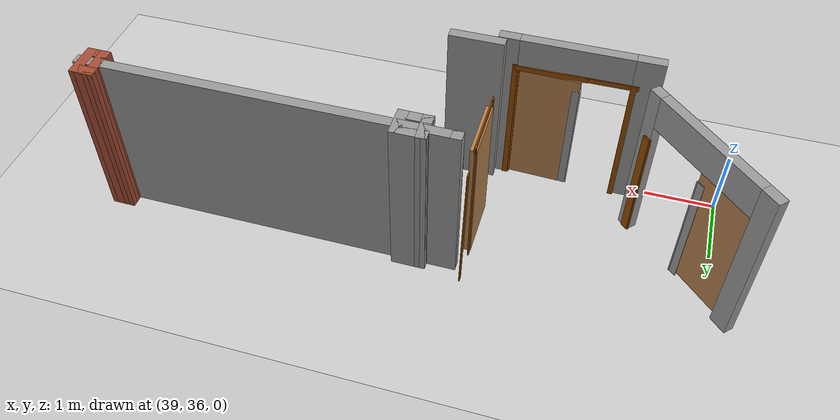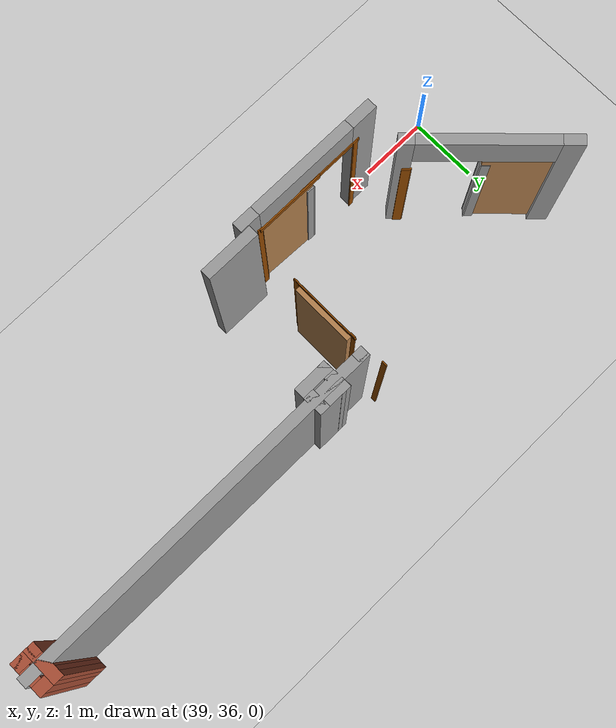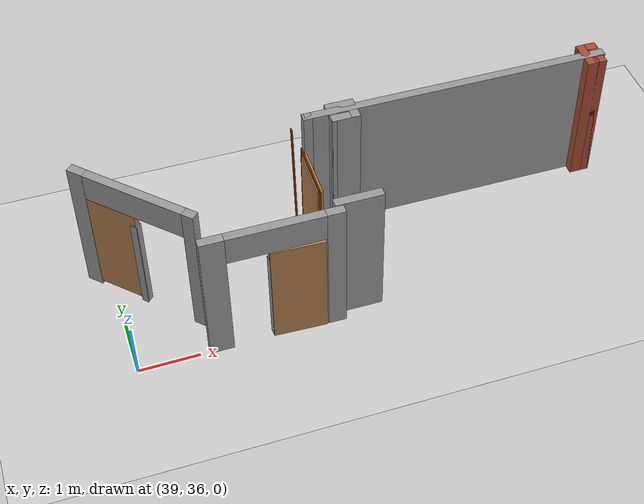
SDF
<sdf version="1.6">
 <world name="default">
  <model name="ground_plane">
   <static>1</static>
   <link name="link">
    <collision name="collision">
     <geometry><plane><normal>0 0 1</normal><size>100 100</size></plane></geometry>
     <surface><friction><ode><mu>100</mu><mu2>50</mu2></ode></friction></surface>
    </collision>
    <visual name="visual">
     <cast_shadows>0</cast_shadows>
     <geometry><plane><normal>0 0 1</normal><size>100 100</size></plane></geometry>
     <material>
      <script><uri>file://media/materials/scripts/gazebo.material</uri><name>Gazebo/Grey</name></script>
     </material>
    </visual>
   </link>
  </model>
  <model name="CVSSP">
   <pose>23.8714 24.094 0 0 -0 0</pose>
   <link name="Wall_1">
    <pose>15.5976 13.2926 0 0 0 -0.785398</pose>
    <visual name="Wall_1_Visual_0">
     <pose>-0.986494 0 1.25 0 -0 0</pose>
     <geometry><box><size>0.277012 0.15 2.5</size></box></geometry>
     <material>
      <script><uri>file://media/materials/scripts/gazebo.material</uri><name>Gazebo/Grey</name></script>
      <ambient>0.588235 0.588235 0.588235 1</ambient>
     </material>
    </visual>
    <collision name="Wall_1_Collision_0">
     <geometry><box><size>0.277012 0.15 2.5</size></box></geometry>
     <pose>-0.986494 0 1.25 0 -0 0</pose>
    </collision>
    <visual name="Wall_1_Visual_1">
     <pose>1.02335 0 1.25 0 -0 0</pose>
     <geometry><box><size>0.203299 0.15 2.5</size></box></geometry>
     <material>
      <script><uri>file://media/materials/scripts/gazebo.material</uri><name>Gazebo/Grey</name></script>
      <ambient>0.588235 0.588235 0.588235 1</ambient>
     </material>
    </visual>
    <collision name="Wall_1_Collision_1">
     <geometry><box><size>0.203299 0.15 2.5</size></box></geometry>
     <pose>1.02335 0 1.25 0 -0 0</pose>
    </collision>
    <visual name="Wall_1_Visual_2">
     <pose>0.036857 0 2.25 0 -0 0</pose>
     <geometry><box><size>1.76969 0.15 0.5</size></box></geometry>
     <material>
      <script><uri>file://media/materials/scripts/gazebo.material</uri><name>Gazebo/Grey</name></script>
      <ambient>0.588235 0.588235 0.588235 1</ambient>
     </material>
    </visual>
    <collision name="Wall_1_Collision_2">
     <geometry><box><size>1.76969 0.15 0.5</size></box></geometry>
     <pose>0.036857 0 2.25 0 -0 0</pose>
    </collision>
   </link>
   <link name="Wall_228">
    <pose>17.4069 11.9566 0 0 -0 0</pose>
    <visual name="Wall_228_Visual_0">
     <pose>-0.929285 0 1.25 0 -0 0</pose>
     <geometry><box><size>0.391429 0.15 2.5</size></box></geometry>
     <material>
      <script><uri>file://media/materials/scripts/gazebo.material</uri><name>Gazebo/Grey</name></script>
      <ambient>0.588235 0.588235 0.588235 1</ambient>
     </material>
    </visual>
    <collision name="Wall_228_Collision_0">
     <geometry><box><size>0.391429 0.15 2.5</size></box></geometry>
     <pose>-0.929285 0 1.25 0 -0 0</pose>
    </collision>
    <visual name="Wall_228_Visual_1">
     <pose>0.97634 0 1.25 0 -0 0</pose>
     <geometry><box><size>0.297321 0.15 2.5</size></box></geometry>
     <material>
      <script><uri>file://media/materials/scripts/gazebo.material</uri><name>Gazebo/Grey</name></script>
      <ambient>0.588235 0.588235 0.588235 1</ambient>
     </material>
    </visual>
    <collision name="Wall_228_Collision_1">
     <geometry><box><size>0.297321 0.15 2.5</size></box></geometry>
     <pose>0.97634 0 1.25 0 -0 0</pose>
    </collision>
    <visual name="Wall_228_Visual_2">
     <pose>0.047054 0 2.25 0 -0 0</pose>
     <geometry><box><size>1.56125 0.15 0.5</size></box></geometry>
     <material>
      <script><uri>file://media/materials/scripts/gazebo.material</uri><name>Gazebo/Grey</name></script>
      <ambient>0.588235 0.588235 0.588235 1</ambient>
     </material>
    </visual>
    <collision name="Wall_228_Collision_2">
     <geometry><box><size>1.56125 0.15 0.5</size></box></geometry>
     <pose>0.047054 0 2.25 0 -0 0</pose>
    </collision>
   </link>
   <link name="Wall_233">
    <collision name="Wall_233_Collision">
     <geometry><box><size>0.784783 0.15 2.5</size></box></geometry>
     <pose>0 0 1.25 0 -0 0</pose>
    </collision>
    <visual name="Wall_233_Visual">
     <pose>0 0 1.25 0 -0 0</pose>
     <geometry><box><size>0.784783 0.15 2.5</size></box></geometry>
     <material>
      <script><uri>file://media/materials/scripts/gazebo.material</uri><name>Gazebo/Grey</name></script>
      <ambient>1 1 1 1</ambient>
     </material>
    </visual>
    <pose>18.7997 12.116 0 0 -0 3.14159</pose>
   </link>
   <link name="Wall_533">
    <collision name="Wall_533_Collision">
     <geometry><box><size>5.25 0.15 2.5</size></box></geometry>
     <pose>0 0 1.25 0 -0 0</pose>
    </collision>
    <visual name="Wall_533_Visual">
     <pose>0 0 1.25 0 -0 0</pose>
     <geometry><box><size>5.25 0.15 2.5</size></box></geometry>
     <material>
      <script><uri>file://media/materials/scripts/gazebo.material</uri><name>Gazebo/Grey</name></script>
      <ambient>0.588235 0.588235 0.588235 1</ambient>
     </material>
    </visual>
    <pose>21.1286 14.0544 0 0 -0 3.14159</pose>
   </link>
   <link name="Wall_534">
    <collision name="Wall_534_Collision">
     <geometry><box><size>0.15 0.15 2.5</size></box></geometry>
     <pose>0 0 1.25 0 -0 0</pose>
    </collision>
    <visual name="Wall_534_Visual">
     <pose>0 0 1.25 0 -0 0</pose>
     <geometry><box><size>0.15 0.15 2.5</size></box></geometry>
     <material>
      <script><uri>file://media/materials/scripts/gazebo.material</uri><name>Gazebo/Grey</name></script>
      <ambient>1 1 1 1</ambient>
     </material>
    </visual>
    <pose>18.5786 14.0544 0 0 -0 0</pose>
   </link>
   <link name="Wall_535">
    <collision name="Wall_535_Collision">
     <geometry><box><size>0.15 0.15 2.5</size></box></geometry>
     <pose>0 0 1.25 0 -0 0</pose>
    </collision>
    <visual name="Wall_535_Visual">
     <pose>0 0 1.25 0 -0 0</pose>
     <geometry><box><size>0.15 0.15 2.5</size></box></geometry>
     <material>
      <script><uri>file://media/materials/scripts/gazebo.material</uri><name>Gazebo/Grey</name></script>
      <ambient>1 1 1 1</ambient>
     </material>
    </visual>
    <pose>18.5786 14.0544 0 0 -0 0</pose>
   </link>
   <link name="Wall_673">
    <collision name="Wall_673_Collision">
     <geometry><box><size>0.486902 0.15 2.5</size></box></geometry>
     <pose>0 0 1.25 0 -0 0</pose>
    </collision>
    <visual name="Wall_673_Visual">
     <pose>0 0 1.25 0 -0 0</pose>
     <geometry><box><size>0.486902 0.15 2.5</size></box></geometry>
     <material>
      <script><uri>file://media/materials/scripts/gazebo.material</uri><name>Gazebo/Grey</name></script>
      <ambient>1 1 1 1</ambient>
     </material>
    </visual>
    <pose>19.1589 14.1574 0 0 -0 0</pose>
   </link>
   <link name="Wall_674">
    <collision name="Wall_674_Collision">
     <geometry><box><size>0.426562 0.15 2.5</size></box></geometry>
     <pose>0 0 1.25 0 -0 0</pose>
    </collision>
    <visual name="Wall_674_Visual">
     <pose>0 0 1.25 0 -0 0</pose>
     <geometry><box><size>0.426562 0.15 2.5</size></box></geometry>
     <material>
      <script><uri>file://media/materials/scripts/gazebo.material</uri><name>Gazebo/Grey</name></script>
      <ambient>1 1 1 1</ambient>
     </material>
    </visual>
    <pose>19.3273 14.0191 0 0 0 -1.5708</pose>
   </link>
   <link name="Wall_675">
    <collision name="Wall_675_Collision">
     <geometry><box><size>0.476846 0.15 2.5</size></box></geometry>
     <pose>0 0 1.25 0 -0 0</pose>
    </collision>
    <visual name="Wall_675_Visual">
     <pose>0 0 1.25 0 -0 0</pose>
     <geometry><box><size>0.476846 0.15 2.5</size></box></geometry>
     <material>
      <script><uri>file://media/materials/scripts/gazebo.material</uri><name>Gazebo/Grey</name></script>
      <ambient>1 1 1 1</ambient>
     </material>
    </visual>
    <pose>19.1639 13.8808 0 0 -0 3.14159</pose>
   </link>
   <link name="Wall_676">
    <collision name="Wall_676_Collision">
     <geometry><box><size>0.426744 0.15 2.5</size></box></geometry>
     <pose>0 0 1.25 0 -0 0</pose>
    </collision>
    <visual name="Wall_676_Visual">
     <pose>0 0 1.25 0 -0 0</pose>
     <geometry><box><size>0.426744 0.15 2.5</size></box></geometry>
     <material>
      <script><uri>file://media/materials/scripts/gazebo.material</uri><name>Gazebo/Grey</name></script>
      <ambient>1 1 1 1</ambient>
     </material>
    </visual>
    <pose>18.9954 14.0191 0 0 -0 1.60714</pose>
   </link>
   <link name="Wall_678">
    <collision name="Wall_678_Collision">
     <geometry><box><size>0.341089 0.15 2.5</size></box></geometry>
     <pose>0 0 1.25 0 -0 0</pose>
    </collision>
    <visual name="Wall_678_Visual">
     <pose>0 0 1.25 0 -0 0</pose>
     <geometry><box><size>0.341089 0.15 2.5</size></box></geometry>
     <material>
      <script><uri>file://media/materials/scripts/gazebo.material</uri><name>Gazebo/Bricks</name></script>
      <ambient>1 1 1 1</ambient>
     </material>
    </visual>
    <pose>23.5361 14.2369 0 0 -0 3.13119</pose>
   </link>
   <link name="Wall_679">
    <collision name="Wall_679_Collision">
     <geometry><box><size>0.501988 0.15 2.5</size></box></geometry>
     <pose>0 0 1.25 0 -0 0</pose>
    </collision>
    <visual name="Wall_679_Visual">
     <pose>0 0 1.25 0 -0 0</pose>
     <geometry><box><size>0.501988 0.15 2.5</size></box></geometry>
     <material>
      <script><uri>file://media/materials/scripts/gazebo.material</uri><name>Gazebo/Bricks</name></script>
      <ambient>1 1 1 1</ambient>
     </material>
    </visual>
    <pose>23.4405 14.0619 0 0 0 -1.5708</pose>
   </link>
   <link name="Wall_680">
    <collision name="Wall_680_Collision">
     <geometry><box><size>0.341145 0.15 2.5</size></box></geometry>
     <pose>0 0 1.25 0 -0 0</pose>
    </collision>
    <visual name="Wall_680_Visual">
     <pose>0 0 1.25 0 -0 0</pose>
     <geometry><box><size>0.341145 0.15 2.5</size></box></geometry>
     <material>
      <script><uri>file://media/materials/scripts/gazebo.material</uri><name>Gazebo/Bricks</name></script>
      <ambient>1 1 1 1</ambient>
     </material>
    </visual>
    <pose>23.5361 13.8859 0 0 -0 0</pose>
   </link>
   <link name="Wall_681">
    <collision name="Wall_681_Collision">
     <geometry><box><size>0.5 0.15 2.5</size></box></geometry>
     <pose>0 0 1.25 0 -0 0</pose>
    </collision>
    <visual name="Wall_681_Visual">
     <pose>0 0 1.25 0 -0 0</pose>
     <geometry><box><size>0.5 0.15 2.5</size></box></geometry>
     <material>
      <script><uri>file://media/materials/scripts/gazebo.material</uri><name>Gazebo/Bricks</name></script>
      <ambient>1 1 1 1</ambient>
     </material>
    </visual>
    <pose>23.6316 14.0609 0 0 -0 1.5708</pose>
   </link>
   <static>1</static>
  </model>
  <model name="basic_ply_door_corrected_clone_0_clone">
   <link name="link">
    <pose>-0 0 1.00385 0 -0 0</pose>
    <inertial>
     <mass>0.5167</mass>
     <inertia>
      <ixx>0.00086117</ixx>
      <ixy>0</ixy>
      <ixz>0</ixz>
      <iyy>0.00086117</iyy>
      <iyz>0</iyz>
      <izz>0.00086117</izz>
     </inertia>
    </inertial>
    <gravity>0</gravity>
    <visual name="visual">
     <geometry><box><size>0.88 0.1 1.96</size></box></geometry>
     <material>
      <script><uri>file://media/materials/scripts/gazebo.material</uri><name>Gazebo/Wood</name></script>
      <shader type="pixel"><normal_map>__default__</normal_map></shader>
      <ambient>1 1 1 1</ambient>
      <diffuse>1 1 1 1</diffuse>
      <specular>0.2 0.2 0.2 1</specular>
      <emissive>0 0 0 1</emissive>
     </material>
    </visual>
    <collision name="collision">
     <geometry><box><size>0.88 0.1 1.96</size></box></geometry>
     <surface>
      <friction>
       <ode><mu>1</mu><mu2>1</mu2><fdir1>0 0 0</fdir1><slip1>0</slip1><slip2>0</slip2></ode>
       <torsional>
        <coefficient>1</coefficient>
        <patch_radius>0</patch_radius>
        <surface_radius>0.01</surface_radius>
        <use_patch_radius>0</use_patch_radius>
        <ode><slip>0</slip></ode>
       </torsional>
      </friction>
      <bounce><restitution_coefficient>0</restitution_coefficient><threshold>1e+06</threshold></bounce>
      <contact>
       <collide_without_contact>0</collide_without_contact>
       <collide_without_contact_bitmask>1</collide_without_contact_bitmask>
       <collide_bitmask>1</collide_bitmask>
       <ode>
        <soft_cfm>0</soft_cfm>
        <soft_erp>0.2</soft_erp>
        <kp>100000</kp>
        <kd>100</kd>
        <max_vel>100</max_vel>
        <min_depth>0.001</min_depth>
       </ode>
       <bullet>
        <split_impulse>1</split_impulse>
        <split_impulse_penetration_threshold>-0.01</split_impulse_penetration_threshold>
        <soft_cfm>0</soft_cfm>
        <soft_erp>0.2</soft_erp>
        <kp>100000</kp>
        <kd>100</kd>
       </bullet>
      </contact>
     </surface>
    </collision>
   </link>
   <static>1</static>
   <pose>42.2958 37.3999 -0.001013 0 -0 1.56379</pose>
  </model>
  <model name="basic_ply_door_corrected_clone_clone_clone_0">
   <link name="link">
    <pose>-0 0 1.00385 0 -0 0</pose>
    <inertial>
     <mass>0.5167</mass>
     <inertia>
      <ixx>0.00086117</ixx>
      <ixy>0</ixy>
      <ixz>0</ixz>
      <iyy>0.00086117</iyy>
      <iyz>0</iyz>
      <izz>0.00086117</izz>
     </inertia>
    </inertial>
    <gravity>0</gravity>
    <visual name="visual">
     <geometry><box><size>0.88 0.1 1.96</size></box></geometry>
     <material>
      <script><uri>file://media/materials/scripts/gazebo.material</uri><name>Gazebo/Wood</name></script>
      <shader type="pixel"><normal_map>__default__</normal_map></shader>
      <ambient>1 1 1 1</ambient>
      <diffuse>1 1 1 1</diffuse>
      <specular>0.2 0.2 0.2 1</specular>
      <emissive>0 0 0 1</emissive>
     </material>
    </visual>
    <collision name="collision">
     <geometry><box><size>0.88 0.1 1.96</size></box></geometry>
     <surface>
      <friction>
       <ode><mu>1</mu><mu2>1</mu2><fdir1>0 0 0</fdir1><slip1>0</slip1><slip2>0</slip2></ode>
       <torsional>
        <coefficient>1</coefficient>
        <patch_radius>0</patch_radius>
        <surface_radius>0.01</surface_radius>
        <use_patch_radius>0</use_patch_radius>
        <ode><slip>0</slip></ode>
       </torsional>
      </friction>
      <bounce><restitution_coefficient>0</restitution_coefficient><threshold>1e+06</threshold></bounce>
      <contact>
       <collide_without_contact>0</collide_without_contact>
       <collide_without_contact_bitmask>1</collide_without_contact_bitmask>
       <collide_bitmask>1</collide_bitmask>
       <ode>
        <soft_cfm>0</soft_cfm>
        <soft_erp>0.2</soft_erp>
        <kp>100000</kp>
        <kd>100</kd>
        <max_vel>100</max_vel>
        <min_depth>0.001</min_depth>
       </ode>
       <bullet>
        <split_impulse>1</split_impulse>
        <split_impulse_penetration_threshold>-0.01</split_impulse_penetration_threshold>
        <soft_cfm>0</soft_cfm>
        <soft_erp>0.2</soft_erp>
        <kp>100000</kp>
        <kd>100</kd>
       </bullet>
      </contact>
     </surface>
    </collision>
   </link>
   <static>1</static>
   <pose>39.1655 37.6601 0.061101 0 0 -0.784105</pose>
  </model>
  <model name="basic_ply_door_corrected_clone_clone_clone_1">
   <link name="link">
    <pose>-0 0 1.00385 0 -0 0</pose>
    <inertial>
     <mass>0.5167</mass>
     <inertia>
      <ixx>0.00086117</ixx>
      <ixy>0</ixy>
      <ixz>0</ixz>
      <iyy>0.00086117</iyy>
      <iyz>0</iyz>
      <izz>0.00086117</izz>
     </inertia>
    </inertial>
    <gravity>0</gravity>
    <visual name="visual">
     <geometry><box><size>0.88 0.1 1.96</size></box></geometry>
     <material>
      <script><uri>file://media/materials/scripts/gazebo.material</uri><name>Gazebo/Wood</name></script>
      <shader type="pixel"><normal_map>__default__</normal_map></shader>
      <ambient>1 1 1 1</ambient>
      <diffuse>1 1 1 1</diffuse>
      <specular>0.2 0.2 0.2 1</specular>
      <emissive>0 0 0 1</emissive>
     </material>
    </visual>
    <collision name="collision">
     <geometry><box><size>0.88 0.1 1.96</size></box></geometry>
     <surface>
      <friction>
       <ode><mu>1</mu><mu2>1</mu2><fdir1>0 0 0</fdir1><slip1>0</slip1><slip2>0</slip2></ode>
       <torsional>
        <coefficient>1</coefficient>
        <patch_radius>0</patch_radius>
        <surface_radius>0.01</surface_radius>
        <use_patch_radius>0</use_patch_radius>
        <ode><slip>0</slip></ode>
       </torsional>
      </friction>
      <bounce><restitution_coefficient>0</restitution_coefficient><threshold>1e+06</threshold></bounce>
      <contact>
       <collide_without_contact>0</collide_without_contact>
       <collide_without_contact_bitmask>1</collide_without_contact_bitmask>
       <collide_bitmask>1</collide_bitmask>
       <ode>
        <soft_cfm>0</soft_cfm>
        <soft_erp>0.2</soft_erp>
        <kp>100000</kp>
        <kd>100</kd>
        <max_vel>100</max_vel>
        <min_depth>0.001</min_depth>
       </ode>
       <bullet>
        <split_impulse>1</split_impulse>
        <split_impulse_penetration_threshold>-0.01</split_impulse_penetration_threshold>
        <soft_cfm>0</soft_cfm>
        <soft_erp>0.2</soft_erp>
        <kp>100000</kp>
        <kd>100</kd>
       </bullet>
      </contact>
     </surface>
    </collision>
   </link>
   <static>1</static>
   <pose>41.6497 36.0398 -0.036806 0 0 -0.036583</pose>
  </model>
  <model name="metal_hinge">
   <link name="link">
    <inertial>
     <mass>1</mass>
     <inertia>
      <ixx>0.166667</ixx>
      <ixy>0</ixy>
      <ixz>0</ixz>
      <iyy>0.166667</iyy>
      <iyz>0</iyz>
      <izz>0.166667</izz>
     </inertia>
    </inertial>
    <visual name="visual">
     <geometry><box><size>0.018685 0.118108 1.77296</size></box></geometry>
     <material>
      <script><name>Gazebo/Grey</name><uri>file://media/materials/scripts/gazebo.material</uri></script>
      <shader type="pixel"/>
     </material>
    </visual>
    <collision name="collision">
     <geometry><box><size>0.018685 0.118108 1.77296</size></box></geometry>
     <surface>
      <friction>
       <ode><mu>1</mu><mu2>1</mu2><fdir1>0 0 0</fdir1><slip1>0</slip1><slip2>0</slip2></ode>
       <torsional>
        <coefficient>1</coefficient>
        <patch_radius>0</patch_radius>
        <surface_radius>0</surface_radius>
        <use_patch_radius>1</use_patch_radius>
        <ode><slip>0</slip></ode>
       </torsional>
      </friction>
      <bounce><restitution_coefficient>0</restitution_coefficient><threshold>1e+06</threshold></bounce>
      <contact>
       <collide_without_contact>0</collide_without_contact>
       <collide_without_contact_bitmask>1</collide_without_contact_bitmask>
       <collide_bitmask>1</collide_bitmask>
       <ode>
        <soft_cfm>0</soft_cfm>
        <soft_erp>0.2</soft_erp>
        <kp>1e+13</kp>
        <kd>1</kd>
        <max_vel>0.01</max_vel>
        <min_depth>0</min_depth>
       </ode>
       <bullet>
        <split_impulse>1</split_impulse>
        <split_impulse_penetration_threshold>-0.01</split_impulse_penetration_threshold>
        <soft_cfm>0</soft_cfm>
        <soft_erp>0.2</soft_erp>
        <kp>1e+13</kp>
        <kd>1</kd>
       </bullet>
      </contact>
     </surface>
    </collision>
   </link>
   <static>1</static>
   <pose>39.4719 37.4232 0.901519 0 0 -2.35193</pose>
  </model>
  <model name="metal_hinge_clone">
   <link name="link">
    <inertial>
     <mass>1</mass>
     <inertia>
      <ixx>0.166667</ixx>
      <ixy>0</ixy>
      <ixz>0</ixz>
      <iyy>0.166667</iyy>
      <iyz>0</iyz>
      <izz>0.166667</izz>
     </inertia>
    </inertial>
    <visual name="visual">
     <geometry><box><size>0.018685 0.118108 1.77296</size></box></geometry>
     <material>
      <script><name>Gazebo/Grey</name><uri>file://media/materials/scripts/gazebo.material</uri></script>
      <shader type="pixel"/>
     </material>
    </visual>
    <collision name="collision">
     <geometry><box><size>0.018685 0.118108 1.77296</size></box></geometry>
     <surface>
      <friction>
       <ode><mu>1</mu><mu2>1</mu2><fdir1>0 0 0</fdir1><slip1>0</slip1><slip2>0</slip2></ode>
       <torsional>
        <coefficient>1</coefficient>
        <patch_radius>0</patch_radius>
        <surface_radius>0</surface_radius>
        <use_patch_radius>1</use_patch_radius>
        <ode><slip>0</slip></ode>
       </torsional>
      </friction>
      <bounce><restitution_coefficient>0</restitution_coefficient><threshold>1e+06</threshold></bounce>
      <contact>
       <collide_without_contact>0</collide_without_contact>
       <collide_without_contact_bitmask>1</collide_without_contact_bitmask>
       <collide_bitmask>1</collide_bitmask>
       <ode>
        <soft_cfm>0</soft_cfm>
        <soft_erp>0.2</soft_erp>
        <kp>1e+13</kp>
        <kd>1</kd>
        <max_vel>0.01</max_vel>
        <min_depth>0</min_depth>
       </ode>
       <bullet>
        <split_impulse>1</split_impulse>
        <split_impulse_penetration_threshold>-0.01</split_impulse_penetration_threshold>
        <soft_cfm>0</soft_cfm>
        <soft_erp>0.2</soft_erp>
        <kp>1e+13</kp>
        <kd>1</kd>
       </bullet>
      </contact>
     </surface>
    </collision>
   </link>
   <static>1</static>
   <pose>39.4112 37.3382 0.901519 0 0 -2.35193</pose>
  </model>
  <model name="metal_hinge_clone_0">
   <link name="link">
    <inertial>
     <mass>1</mass>
     <inertia>
      <ixx>0.166667</ixx>
      <ixy>0</ixy>
      <ixz>0</ixz>
      <iyy>0.166667</iyy>
      <iyz>0</iyz>
      <izz>0.166667</izz>
     </inertia>
    </inertial>
    <visual name="visual">
     <geometry><box><size>0.018685 0.118108 1.77296</size></box></geometry>
     <material>
      <script><name>Gazebo/Grey</name><uri>file://media/materials/scripts/gazebo.material</uri></script>
      <shader type="pixel"/>
     </material>
    </visual>
    <collision name="collision">
     <geometry><box><size>0.018685 0.118108 1.77296</size></box></geometry>
     <surface>
      <friction>
       <ode><mu>1</mu><mu2>1</mu2><fdir1>0 0 0</fdir1><slip1>0</slip1><slip2>0</slip2></ode>
       <torsional>
        <coefficient>1</coefficient>
        <patch_radius>0</patch_radius>
        <surface_radius>0</surface_radius>
        <use_patch_radius>1</use_patch_radius>
        <ode><slip>0</slip></ode>
       </torsional>
      </friction>
      <bounce><restitution_coefficient>0</restitution_coefficient><threshold>1e+06</threshold></bounce>
      <contact>
       <collide_without_contact>0</collide_without_contact>
       <collide_without_contact_bitmask>1</collide_without_contact_bitmask>
       <collide_bitmask>1</collide_bitmask>
       <ode>
        <soft_cfm>0</soft_cfm>
        <soft_erp>0.2</soft_erp>
        <kp>1e+13</kp>
        <kd>1</kd>
        <max_vel>0.01</max_vel>
        <min_depth>0</min_depth>
       </ode>
       <bullet>
        <split_impulse>1</split_impulse>
        <split_impulse_penetration_threshold>-0.01</split_impulse_penetration_threshold>
        <soft_cfm>0</soft_cfm>
        <soft_erp>0.2</soft_erp>
        <kp>1e+13</kp>
        <kd>1</kd>
       </bullet>
      </contact>
     </surface>
    </collision>
   </link>
   <static>1</static>
   <pose>39.487 37.3452 0.901519 0 -0 2.34901</pose>
  </model>
  <model name="metal_hinge_clone_1">
   <link name="link">
    <inertial>
     <mass>1</mass>
     <inertia>
      <ixx>0.166667</ixx>
      <ixy>0</ixy>
      <ixz>0</ixz>
      <iyy>0.166667</iyy>
      <iyz>0</iyz>
      <izz>0.166667</izz>
     </inertia>
    </inertial>
    <visual name="visual">
     <geometry><box><size>0.018685 0.118108 1.77296</size></box></geometry>
     <material>
      <script><name>Gazebo/Grey</name><uri>file://media/materials/scripts/gazebo.material</uri></script>
      <shader type="pixel"/>
     </material>
    </visual>
    <collision name="collision">
     <geometry><box><size>0.018685 0.118108 1.77296</size></box></geometry>
     <surface>
      <friction>
       <ode><mu>1</mu><mu2>1</mu2><fdir1>0 0 0</fdir1><slip1>0</slip1><slip2>0</slip2></ode>
       <torsional>
        <coefficient>1</coefficient>
        <patch_radius>0</patch_radius>
        <surface_radius>0</surface_radius>
        <use_patch_radius>1</use_patch_radius>
        <ode><slip>0</slip></ode>
       </torsional>
      </friction>
      <bounce><restitution_coefficient>0</restitution_coefficient><threshold>1e+06</threshold></bounce>
      <contact>
       <collide_without_contact>0</collide_without_contact>
       <collide_without_contact_bitmask>1</collide_without_contact_bitmask>
       <collide_bitmask>1</collide_bitmask>
       <ode>
        <soft_cfm>0</soft_cfm>
        <soft_erp>0.2</soft_erp>
        <kp>1e+13</kp>
        <kd>1</kd>
        <max_vel>0.01</max_vel>
        <min_depth>0</min_depth>
       </ode>
       <bullet>
        <split_impulse>1</split_impulse>
        <split_impulse_penetration_threshold>-0.01</split_impulse_penetration_threshold>
        <soft_cfm>0</soft_cfm>
        <soft_erp>0.2</soft_erp>
        <kp>1e+13</kp>
        <kd>1</kd>
       </bullet>
      </contact>
     </surface>
    </collision>
   </link>
   <static>1</static>
   <pose>41.2569 36.1151 0.901519 0 0 -1.57213</pose>
  </model>
  <model name="metal_hinge_clone_1_clone_clone">
   <link name="link">
    <inertial>
     <mass>1</mass>
     <inertia>
      <ixx>0.166667</ixx>
      <ixy>0</ixy>
      <ixz>0</ixz>
      <iyy>0.166667</iyy>
      <iyz>0</iyz>
      <izz>0.166667</izz>
     </inertia>
    </inertial>
    <visual name="visual">
     <geometry><box><size>0.018685 0.118108 1.77296</size></box></geometry>
     <material>
      <script><name>Gazebo/Grey</name><uri>file://media/materials/scripts/gazebo.material</uri></script>
      <shader type="pixel"/>
     </material>
    </visual>
    <collision name="collision">
     <geometry><box><size>0.018685 0.118108 1.77296</size></box></geometry>
     <surface>
      <friction>
       <ode><mu>1</mu><mu2>1</mu2><fdir1>0 0 0</fdir1><slip1>0</slip1><slip2>0</slip2></ode>
       <torsional>
        <coefficient>1</coefficient>
        <patch_radius>0</patch_radius>
        <surface_radius>0</surface_radius>
        <use_patch_radius>1</use_patch_radius>
        <ode><slip>0</slip></ode>
       </torsional>
      </friction>
      <bounce><restitution_coefficient>0</restitution_coefficient><threshold>1e+06</threshold></bounce>
      <contact>
       <collide_without_contact>0</collide_without_contact>
       <collide_without_contact_bitmask>1</collide_without_contact_bitmask>
       <collide_bitmask>1</collide_bitmask>
       <ode>
        <soft_cfm>0</soft_cfm>
        <soft_erp>0.2</soft_erp>
        <kp>1e+13</kp>
        <kd>1</kd>
        <max_vel>0.01</max_vel>
        <min_depth>0</min_depth>
       </ode>
       <bullet>
        <split_impulse>1</split_impulse>
        <split_impulse_penetration_threshold>-0.01</split_impulse_penetration_threshold>
        <soft_cfm>0</soft_cfm>
        <soft_erp>0.2</soft_erp>
        <kp>1e+13</kp>
        <kd>1</kd>
       </bullet>
      </contact>
     </surface>
    </collision>
   </link>
   <static>1</static>
   <pose>41.2061 36.0674 0.901519 0 0 -3.05372</pose>
  </model>
  <model name="oak_frame_clone_1">
   <link name="link">
    <inertial>
     <mass>1</mass>
     <inertia>
      <ixx>0.166667</ixx>
      <ixy>0</ixy>
      <ixz>0</ixz>
      <iyy>0.166667</iyy>
      <iyz>0</iyz>
      <izz>0.166667</izz>
     </inertia>
    </inertial>
    <visual name="visual">
     <geometry><box><size>0.018685 0.118108 1.77296</size></box></geometry>
     <material>
      <script><name>Gazebo/Grey</name><uri>file://media/materials/scripts/gazebo.material</uri></script>
      <shader type="pixel"><normal_map>__default__</normal_map></shader>
      <diffuse>0.58 0.29 0 0</diffuse>
      <ambient>0.58 0.29 0 1</ambient>
      <specular>0.01 0.01 0.01 1</specular>
      <emissive>0 0 0 1</emissive>
     </material>
    </visual>
    <collision name="collision">
     <geometry><box><size>0.018685 0.118108 1.77296</size></box></geometry>
     <surface>
      <friction>
       <ode><mu>1</mu><mu2>1</mu2><fdir1>0 0 0</fdir1><slip1>0</slip1><slip2>0</slip2></ode>
       <torsional>
        <coefficient>1</coefficient>
        <patch_radius>0</patch_radius>
        <surface_radius>0</surface_radius>
        <use_patch_radius>1</use_patch_radius>
        <ode><slip>0</slip></ode>
       </torsional>
      </friction>
      <bounce><restitution_coefficient>0</restitution_coefficient><threshold>1e+06</threshold></bounce>
      <contact>
       <collide_without_contact>0</collide_without_contact>
       <collide_without_contact_bitmask>1</collide_without_contact_bitmask>
       <collide_bitmask>1</collide_bitmask>
       <ode>
        <soft_cfm>0</soft_cfm>
        <soft_erp>0.2</soft_erp>
        <kp>1e+13</kp>
        <kd>1</kd>
        <max_vel>0.01</max_vel>
        <min_depth>0</min_depth>
       </ode>
       <bullet>
        <split_impulse>1</split_impulse>
        <split_impulse_penetration_threshold>-0.01</split_impulse_penetration_threshold>
        <soft_cfm>0</soft_cfm>
        <soft_erp>0.2</soft_erp>
        <kp>1e+13</kp>
        <kd>1</kd>
       </bullet>
      </contact>
     </surface>
    </collision>
   </link>
   <static>1</static>
   <pose>40.2239 36.7631 0.901519 0 0 -2.35193</pose>
  </model>
  <model name="oak_frame_clone_2">
   <link name="link">
    <inertial>
     <mass>1</mass>
     <inertia>
      <ixx>0.166667</ixx>
      <ixy>0</ixy>
      <ixz>0</ixz>
      <iyy>0.166667</iyy>
      <iyz>0</iyz>
      <izz>0.166667</izz>
     </inertia>
    </inertial>
    <visual name="visual">
     <geometry><box><size>0.018685 0.118108 1.77296</size></box></geometry>
     <material>
      <script><name>Gazebo/Grey</name><uri>file://media/materials/scripts/gazebo.material</uri></script>
      <shader type="pixel"><normal_map>__default__</normal_map></shader>
      <diffuse>0.58 0.29 0 0</diffuse>
      <ambient>0.58 0.29 0 1</ambient>
      <specular>0.01 0.01 0.01 1</specular>
      <emissive>0 0 0 1</emissive>
     </material>
    </visual>
    <collision name="collision">
     <geometry><box><size>0.018685 0.118108 1.77296</size></box></geometry>
     <surface>
      <friction>
       <ode><mu>1</mu><mu2>1</mu2><fdir1>0 0 0</fdir1><slip1>0</slip1><slip2>0</slip2></ode>
       <torsional>
        <coefficient>1</coefficient>
        <patch_radius>0</patch_radius>
        <surface_radius>0</surface_radius>
        <use_patch_radius>1</use_patch_radius>
        <ode><slip>0</slip></ode>
       </torsional>
      </friction>
      <bounce><restitution_coefficient>0</restitution_coefficient><threshold>1e+06</threshold></bounce>
      <contact>
       <collide_without_contact>0</collide_without_contact>
       <collide_without_contact_bitmask>1</collide_without_contact_bitmask>
       <collide_bitmask>1</collide_bitmask>
       <ode>
        <soft_cfm>0</soft_cfm>
        <soft_erp>0.2</soft_erp>
        <kp>1e+13</kp>
        <kd>1</kd>
        <max_vel>0.01</max_vel>
        <min_depth>0</min_depth>
       </ode>
       <bullet>
        <split_impulse>1</split_impulse>
        <split_impulse_penetration_threshold>-0.01</split_impulse_penetration_threshold>
        <soft_cfm>0</soft_cfm>
        <soft_erp>0.2</soft_erp>
        <kp>1e+13</kp>
        <kd>1</kd>
       </bullet>
      </contact>
     </surface>
    </collision>
   </link>
   <static>1</static>
   <pose>40.2034 36.7621 0.901519 0 0 -2.35193</pose>
  </model>
  <model name="oak_frame_clone_3_clone_clone">
   <link name="link">
    <inertial>
     <mass>1</mass>
     <inertia>
      <ixx>0.166667</ixx>
      <ixy>0</ixy>
      <ixz>0</ixz>
      <iyy>0.166667</iyy>
      <iyz>0</iyz>
      <izz>0.166667</izz>
     </inertia>
    </inertial>
    <visual name="visual">
     <geometry><box><size>0.018685 0.07556 2.09672</size></box></geometry>
     <material>
      <script><name>Gazebo/Grey</name><uri>file://media/materials/scripts/gazebo.material</uri></script>
      <shader type="pixel"><normal_map>__default__</normal_map></shader>
      <diffuse>0.58 0.29 0 0</diffuse>
      <ambient>0.58 0.29 0 1</ambient>
      <specular>0.01 0.01 0.01 1</specular>
      <emissive>0 0 0 1</emissive>
     </material>
    </visual>
    <collision name="collision">
     <geometry><box><size>0.018685 0.07556 2.09672</size></box></geometry>
     <surface>
      <friction>
       <ode><mu>1</mu><mu2>1</mu2><fdir1>0 0 0</fdir1><slip1>0</slip1><slip2>0</slip2></ode>
       <torsional>
        <coefficient>1</coefficient>
        <patch_radius>0</patch_radius>
        <surface_radius>0</surface_radius>
        <use_patch_radius>1</use_patch_radius>
        <ode><slip>0</slip></ode>
       </torsional>
      </friction>
      <bounce><restitution_coefficient>0</restitution_coefficient><threshold>1e+06</threshold></bounce>
      <contact>
       <collide_without_contact>0</collide_without_contact>
       <collide_without_contact_bitmask>1</collide_without_contact_bitmask>
       <collide_bitmask>1</collide_bitmask>
       <ode>
        <soft_cfm>0</soft_cfm>
        <soft_erp>0.2</soft_erp>
        <kp>1e+13</kp>
        <kd>1</kd>
        <max_vel>0.01</max_vel>
        <min_depth>0</min_depth>
       </ode>
       <bullet>
        <split_impulse>1</split_impulse>
        <split_impulse_penetration_threshold>-0.01</split_impulse_penetration_threshold>
        <soft_cfm>0</soft_cfm>
        <soft_erp>0.2</soft_erp>
        <kp>1e+13</kp>
        <kd>1</kd>
       </bullet>
      </contact>
     </surface>
    </collision>
   </link>
   <static>1</static>
   <pose>42.1327 36.1272 1.03498 0 0 -1.54792</pose>
  </model>
  <model name="oak_frame_clone_3_clone_clone_clone">
   <link name="link">
    <inertial>
     <mass>1</mass>
     <inertia>
      <ixx>0.166667</ixx>
      <ixy>0</ixy>
      <ixz>0</ixz>
      <iyy>0.166667</iyy>
      <iyz>0</iyz>
      <izz>0.166667</izz>
     </inertia>
    </inertial>
    <visual name="visual">
     <geometry><box><size>0.018685 0.07556 2.09672</size></box></geometry>
     <material>
      <script><name>Gazebo/Grey</name><uri>file://media/materials/scripts/gazebo.material</uri></script>
      <shader type="pixel"><normal_map>__default__</normal_map></shader>
      <diffuse>0.58 0.29 0 0</diffuse>
      <ambient>0.58 0.29 0 1</ambient>
      <specular>0.01 0.01 0.01 1</specular>
      <emissive>0 0 0 1</emissive>
     </material>
    </visual>
    <collision name="collision">
     <geometry><box><size>0.018685 0.07556 2.09672</size></box></geometry>
     <surface>
      <friction>
       <ode><mu>1</mu><mu2>1</mu2><fdir1>0 0 0</fdir1><slip1>0</slip1><slip2>0</slip2></ode>
       <torsional>
        <coefficient>1</coefficient>
        <patch_radius>0</patch_radius>
        <surface_radius>0</surface_radius>
        <use_patch_radius>1</use_patch_radius>
        <ode><slip>0</slip></ode>
       </torsional>
      </friction>
      <bounce><restitution_coefficient>0</restitution_coefficient><threshold>1e+06</threshold></bounce>
      <contact>
       <collide_without_contact>0</collide_without_contact>
       <collide_without_contact_bitmask>1</collide_without_contact_bitmask>
       <collide_bitmask>1</collide_bitmask>
       <ode>
        <soft_cfm>0</soft_cfm>
        <soft_erp>0.2</soft_erp>
        <kp>1e+13</kp>
        <kd>1</kd>
        <max_vel>0.01</max_vel>
        <min_depth>0</min_depth>
       </ode>
       <bullet>
        <split_impulse>1</split_impulse>
        <split_impulse_penetration_threshold>-0.01</split_impulse_penetration_threshold>
        <soft_cfm>0</soft_cfm>
        <soft_erp>0.2</soft_erp>
        <kp>1e+13</kp>
        <kd>1</kd>
       </bullet>
      </contact>
     </surface>
    </collision>
   </link>
   <static>1</static>
   <pose>42.108 36.1061 1.03498 0 0 -1.54792</pose>
  </model>
  <model name="oak_frame_clone_3_clone_clone_2">
   <link name="link">
    <inertial>
     <mass>1</mass>
     <inertia>
      <ixx>0.166667</ixx>
      <ixy>0</ixy>
      <ixz>0</ixz>
      <iyy>0.166667</iyy>
      <iyz>0</iyz>
      <izz>0.166667</izz>
     </inertia>
    </inertial>
    <visual name="visual">
     <geometry><box><size>0.018685 0.07556 2.09672</size></box></geometry>
     <material>
      <script><name>Gazebo/Grey</name><uri>file://media/materials/scripts/gazebo.material</uri></script>
      <shader type="pixel"><normal_map>__default__</normal_map></shader>
      <diffuse>0.58 0.29 0 0</diffuse>
      <ambient>0.58 0.29 0 1</ambient>
      <specular>0.01 0.01 0.01 1</specular>
      <emissive>0 0 0 1</emissive>
     </material>
    </visual>
    <collision name="collision">
     <geometry><box><size>0.018685 0.07556 2.09672</size></box></geometry>
     <surface>
      <friction>
       <ode><mu>1</mu><mu2>1</mu2><fdir1>0 0 0</fdir1><slip1>0</slip1><slip2>0</slip2></ode>
       <torsional>
        <coefficient>1</coefficient>
        <patch_radius>0</patch_radius>
        <surface_radius>0</surface_radius>
        <use_patch_radius>1</use_patch_radius>
        <ode><slip>0</slip></ode>
       </torsional>
      </friction>
      <bounce><restitution_coefficient>0</restitution_coefficient><threshold>1e+06</threshold></bounce>
      <contact>
       <collide_without_contact>0</collide_without_contact>
       <collide_without_contact_bitmask>1</collide_without_contact_bitmask>
       <collide_bitmask>1</collide_bitmask>
       <ode>
        <soft_cfm>0</soft_cfm>
        <soft_erp>0.2</soft_erp>
        <kp>1e+13</kp>
        <kd>1</kd>
        <max_vel>0.01</max_vel>
        <min_depth>0</min_depth>
       </ode>
       <bullet>
        <split_impulse>1</split_impulse>
        <split_impulse_penetration_threshold>-0.01</split_impulse_penetration_threshold>
        <soft_cfm>0</soft_cfm>
        <soft_erp>0.2</soft_erp>
        <kp>1e+13</kp>
        <kd>1</kd>
       </bullet>
      </contact>
     </surface>
    </collision>
   </link>
   <static>1</static>
   <pose>40.5127 36.1445 1.03498 0 0 -1.54792</pose>
  </model>
  <model name="oak_frame_clone_3_clone_1_clone">
   <link name="link">
    <inertial>
     <mass>1</mass>
     <inertia>
      <ixx>0.166667</ixx>
      <ixy>0</ixy>
      <ixz>0</ixz>
      <iyy>0.166667</iyy>
      <iyz>0</iyz>
      <izz>0.166667</izz>
     </inertia>
    </inertial>
    <visual name="visual">
     <geometry><box><size>0.018685 0.07556 2.09672</size></box></geometry>
     <material>
      <script><name>Gazebo/Grey</name><uri>file://media/materials/scripts/gazebo.material</uri></script>
      <shader type="pixel"><normal_map>__default__</normal_map></shader>
      <diffuse>0.58 0.29 0 0</diffuse>
      <ambient>0.58 0.29 0 1</ambient>
      <specular>0.01 0.01 0.01 1</specular>
      <emissive>0 0 0 1</emissive>
     </material>
    </visual>
    <collision name="collision">
     <geometry><box><size>0.018685 0.07556 2.09672</size></box></geometry>
     <surface>
      <friction>
       <ode><mu>1</mu><mu2>1</mu2><fdir1>0 0 0</fdir1><slip1>0</slip1><slip2>0</slip2></ode>
       <torsional>
        <coefficient>1</coefficient>
        <patch_radius>0</patch_radius>
        <surface_radius>0</surface_radius>
        <use_patch_radius>1</use_patch_radius>
        <ode><slip>0</slip></ode>
       </torsional>
      </friction>
      <bounce><restitution_coefficient>0</restitution_coefficient><threshold>1e+06</threshold></bounce>
      <contact>
       <collide_without_contact>0</collide_without_contact>
       <collide_without_contact_bitmask>1</collide_without_contact_bitmask>
       <collide_bitmask>1</collide_bitmask>
       <ode>
        <soft_cfm>0</soft_cfm>
        <soft_erp>0.2</soft_erp>
        <kp>1e+13</kp>
        <kd>1</kd>
        <max_vel>0.01</max_vel>
        <min_depth>0</min_depth>
       </ode>
       <bullet>
        <split_impulse>1</split_impulse>
        <split_impulse_penetration_threshold>-0.01</split_impulse_penetration_threshold>
        <soft_cfm>0</soft_cfm>
        <soft_erp>0.2</soft_erp>
        <kp>1e+13</kp>
        <kd>1</kd>
       </bullet>
      </contact>
     </surface>
    </collision>
   </link>
   <static>1</static>
   <pose>42.2602 38.3547 1.03333 0.00382 0.014449 -3.13067</pose>
  </model>
  <model name="oak_frame_clone_3_clone_1_clone_0">
   <link name="link">
    <inertial>
     <mass>1</mass>
     <inertia>
      <ixx>0.166667</ixx>
      <ixy>0</ixy>
      <ixz>0</ixz>
      <iyy>0.166667</iyy>
      <iyz>0</iyz>
      <izz>0.166667</izz>
     </inertia>
    </inertial>
    <visual name="visual">
     <geometry><box><size>0.018685 0.07556 2.09672</size></box></geometry>
     <material>
      <script><name>Gazebo/Grey</name><uri>file://media/materials/scripts/gazebo.material</uri></script>
      <shader type="pixel"><normal_map>__default__</normal_map></shader>
      <diffuse>0.58 0.29 0 0</diffuse>
      <ambient>0.58 0.29 0 1</ambient>
      <specular>0.01 0.01 0.01 1</specular>
      <emissive>0 0 0 1</emissive>
     </material>
    </visual>
    <collision name="collision">
     <geometry><box><size>0.018685 0.07556 2.09672</size></box></geometry>
     <surface>
      <friction>
       <ode><mu>1</mu><mu2>1</mu2><fdir1>0 0 0</fdir1><slip1>0</slip1><slip2>0</slip2></ode>
       <torsional>
        <coefficient>1</coefficient>
        <patch_radius>0</patch_radius>
        <surface_radius>0</surface_radius>
        <use_patch_radius>1</use_patch_radius>
        <ode><slip>0</slip></ode>
       </torsional>
      </friction>
      <bounce><restitution_coefficient>0</restitution_coefficient><threshold>1e+06</threshold></bounce>
      <contact>
       <collide_without_contact>0</collide_without_contact>
       <collide_without_contact_bitmask>1</collide_without_contact_bitmask>
       <collide_bitmask>1</collide_bitmask>
       <ode>
        <soft_cfm>0</soft_cfm>
        <soft_erp>0.2</soft_erp>
        <kp>1e+13</kp>
        <kd>1</kd>
        <max_vel>0.01</max_vel>
        <min_depth>0</min_depth>
       </ode>
       <bullet>
        <split_impulse>1</split_impulse>
        <split_impulse_penetration_threshold>-0.01</split_impulse_penetration_threshold>
        <soft_cfm>0</soft_cfm>
        <soft_erp>0.2</soft_erp>
        <kp>1e+13</kp>
        <kd>1</kd>
       </bullet>
      </contact>
     </surface>
    </collision>
   </link>
   <static>1</static>
   <pose>42.2681 37.8631 1.03336 -0.008142 0.000764 -3.13056</pose>
  </model>
  <model name="oak_frame_clone_3_clone_1_clone_1">
   <link name="link">
    <inertial>
     <mass>1</mass>
     <inertia>
      <ixx>0.166667</ixx>
      <ixy>0</ixy>
      <ixz>0</ixz>
      <iyy>0.166667</iyy>
      <iyz>0</iyz>
      <izz>0.166667</izz>
     </inertia>
    </inertial>
    <visual name="visual">
     <geometry><box><size>0.018685 0.07556 2.09672</size></box></geometry>
     <material>
      <script><name>Gazebo/Grey</name><uri>file://media/materials/scripts/gazebo.material</uri></script>
      <shader type="pixel"><normal_map>__default__</normal_map></shader>
      <diffuse>0.58 0.29 0 0</diffuse>
      <ambient>0.58 0.29 0 1</ambient>
      <specular>0.01 0.01 0.01 1</specular>
      <emissive>0 0 0 1</emissive>
     </material>
    </visual>
    <collision name="collision">
     <geometry><box><size>0.018685 0.07556 2.09672</size></box></geometry>
     <surface>
      <friction>
       <ode><mu>1</mu><mu2>1</mu2><fdir1>0 0 0</fdir1><slip1>0</slip1><slip2>0</slip2></ode>
       <torsional>
        <coefficient>1</coefficient>
        <patch_radius>0</patch_radius>
        <surface_radius>0</surface_radius>
        <use_patch_radius>1</use_patch_radius>
        <ode><slip>0</slip></ode>
       </torsional>
      </friction>
      <bounce><restitution_coefficient>0</restitution_coefficient><threshold>1e+06</threshold></bounce>
      <contact>
       <collide_without_contact>0</collide_without_contact>
       <collide_without_contact_bitmask>1</collide_without_contact_bitmask>
       <collide_bitmask>1</collide_bitmask>
       <ode>
        <soft_cfm>0</soft_cfm>
        <soft_erp>0.2</soft_erp>
        <kp>1e+13</kp>
        <kd>1</kd>
        <max_vel>0.01</max_vel>
        <min_depth>0</min_depth>
       </ode>
       <bullet>
        <split_impulse>1</split_impulse>
        <split_impulse_penetration_threshold>-0.01</split_impulse_penetration_threshold>
        <soft_cfm>0</soft_cfm>
        <soft_erp>0.2</soft_erp>
        <kp>1e+13</kp>
        <kd>1</kd>
       </bullet>
      </contact>
     </surface>
    </collision>
   </link>
   <static>1</static>
   <pose>42.2726 36.9091 1.03352 -0.008142 0.000764 -3.13056</pose>
  </model>
  <model name="oak_frame_clone_3_clone_0_clone_clone">
   <link name="link">
    <inertial>
     <mass>1</mass>
     <inertia>
      <ixx>0.166667</ixx>
      <ixy>0</ixy>
      <ixz>0</ixz>
      <iyy>0.166667</iyy>
      <iyz>0</iyz>
      <izz>0.166667</izz>
     </inertia>
    </inertial>
    <visual name="visual">
     <geometry><box><size>0.018685 0.07556 1.01014</size></box></geometry>
     <material>
      <script><name>Gazebo/Grey</name><uri>file://media/materials/scripts/gazebo.material</uri></script>
      <shader type="pixel"><normal_map>__default__</normal_map></shader>
      <diffuse>0.58 0.29 0 0</diffuse>
      <ambient>0.58 0.29 0 1</ambient>
      <specular>0.01 0.01 0.01 1</specular>
      <emissive>0 0 0 1</emissive>
     </material>
    </visual>
    <collision name="collision">
     <geometry><box><size>0.018685 0.07556 1.01014</size></box></geometry>
     <surface>
      <friction>
       <ode><mu>1</mu><mu2>1</mu2><fdir1>0 0 0</fdir1><slip1>0</slip1><slip2>0</slip2></ode>
       <torsional>
        <coefficient>1</coefficient>
        <patch_radius>0</patch_radius>
        <surface_radius>0</surface_radius>
        <use_patch_radius>1</use_patch_radius>
        <ode><slip>0</slip></ode>
       </torsional>
      </friction>
      <bounce><restitution_coefficient>0</restitution_coefficient><threshold>1e+06</threshold></bounce>
      <contact>
       <collide_without_contact>0</collide_without_contact>
       <collide_without_contact_bitmask>1</collide_without_contact_bitmask>
       <collide_bitmask>1</collide_bitmask>
       <ode>
        <soft_cfm>0</soft_cfm>
        <soft_erp>0.2</soft_erp>
        <kp>1e+13</kp>
        <kd>1</kd>
        <max_vel>0.01</max_vel>
        <min_depth>0</min_depth>
       </ode>
       <bullet>
        <split_impulse>1</split_impulse>
        <split_impulse_penetration_threshold>-0.01</split_impulse_penetration_threshold>
        <soft_cfm>0</soft_cfm>
        <soft_erp>0.2</soft_erp>
        <kp>1e+13</kp>
        <kd>1</kd>
       </bullet>
      </contact>
     </surface>
    </collision>
   </link>
   <static>1</static>
   <pose>42.2737 37.4085 2.04113 1.56983 0.062428 -0.004568</pose>
  </model>
  <model name="oak_frame_clone_3_clone_0_clone_0">
   <link name="link">
    <inertial>
     <mass>1</mass>
     <inertia>
      <ixx>0.166667</ixx>
      <ixy>0</ixy>
      <ixz>0</ixz>
      <iyy>0.166667</iyy>
      <iyz>0</iyz>
      <izz>0.166667</izz>
     </inertia>
    </inertial>
    <visual name="visual">
     <geometry><box><size>0.018685 0.07556 1.01014</size></box></geometry>
     <material>
      <script><name>Gazebo/Grey</name><uri>file://media/materials/scripts/gazebo.material</uri></script>
      <shader type="pixel"><normal_map>__default__</normal_map></shader>
      <diffuse>0.58 0.29 0 0</diffuse>
      <ambient>0.58 0.29 0 1</ambient>
      <specular>0.01 0.01 0.01 1</specular>
      <emissive>0 0 0 1</emissive>
     </material>
    </visual>
    <collision name="collision">
     <geometry><box><size>0.018685 0.07556 1.01014</size></box></geometry>
     <surface>
      <friction>
       <ode><mu>1</mu><mu2>1</mu2><fdir1>0 0 0</fdir1><slip1>0</slip1><slip2>0</slip2></ode>
       <torsional>
        <coefficient>1</coefficient>
        <patch_radius>0</patch_radius>
        <surface_radius>0</surface_radius>
        <use_patch_radius>1</use_patch_radius>
        <ode><slip>0</slip></ode>
       </torsional>
      </friction>
      <bounce><restitution_coefficient>0</restitution_coefficient><threshold>1e+06</threshold></bounce>
      <contact>
       <collide_without_contact>0</collide_without_contact>
       <collide_without_contact_bitmask>1</collide_without_contact_bitmask>
       <collide_bitmask>1</collide_bitmask>
       <ode>
        <soft_cfm>0</soft_cfm>
        <soft_erp>0.2</soft_erp>
        <kp>1e+13</kp>
        <kd>1</kd>
        <max_vel>0.01</max_vel>
        <min_depth>0</min_depth>
       </ode>
       <bullet>
        <split_impulse>1</split_impulse>
        <split_impulse_penetration_threshold>-0.01</split_impulse_penetration_threshold>
        <soft_cfm>0</soft_cfm>
        <soft_erp>0.2</soft_erp>
        <kp>1e+13</kp>
        <kd>1</kd>
       </bullet>
      </contact>
     </surface>
    </collision>
   </link>
   <static>1</static>
   <pose>41.6322 36.143 2.04296 1.56806 -0.000643 -1.57018</pose>
  </model>
  <model name="oak_frame_clone_3_clone_0_clone_1">
   <link name="link">
    <inertial>
     <mass>1</mass>
     <inertia>
      <ixx>0.166667</ixx>
      <ixy>0</ixy>
      <ixz>0</ixz>
      <iyy>0.166667</iyy>
      <iyz>0</iyz>
      <izz>0.166667</izz>
     </inertia>
    </inertial>
    <visual name="visual">
     <geometry><box><size>0.018685 0.07556 1.01014</size></box></geometry>
     <material>
      <script><name>Gazebo/Grey</name><uri>file://media/materials/scripts/gazebo.material</uri></script>
      <shader type="pixel"><normal_map>__default__</normal_map></shader>
      <diffuse>0.58 0.29 0 0</diffuse>
      <ambient>0.58 0.29 0 1</ambient>
      <specular>0.01 0.01 0.01 1</specular>
      <emissive>0 0 0 1</emissive>
     </material>
    </visual>
    <collision name="collision">
     <geometry><box><size>0.018685 0.07556 1.01014</size></box></geometry>
     <surface>
      <friction>
       <ode><mu>1</mu><mu2>1</mu2><fdir1>0 0 0</fdir1><slip1>0</slip1><slip2>0</slip2></ode>
       <torsional>
        <coefficient>1</coefficient>
        <patch_radius>0</patch_radius>
        <surface_radius>0</surface_radius>
        <use_patch_radius>1</use_patch_radius>
        <ode><slip>0</slip></ode>
       </torsional>
      </friction>
      <bounce><restitution_coefficient>0</restitution_coefficient><threshold>1e+06</threshold></bounce>
      <contact>
       <collide_without_contact>0</collide_without_contact>
       <collide_without_contact_bitmask>1</collide_without_contact_bitmask>
       <collide_bitmask>1</collide_bitmask>
       <ode>
        <soft_cfm>0</soft_cfm>
        <soft_erp>0.2</soft_erp>
        <kp>1e+13</kp>
        <kd>1</kd>
        <max_vel>0.01</max_vel>
        <min_depth>0</min_depth>
       </ode>
       <bullet>
        <split_impulse>1</split_impulse>
        <split_impulse_penetration_threshold>-0.01</split_impulse_penetration_threshold>
        <soft_cfm>0</soft_cfm>
        <soft_erp>0.2</soft_erp>
        <kp>1e+13</kp>
        <kd>1</kd>
       </bullet>
      </contact>
     </surface>
    </collision>
   </link>
   <static>1</static>
   <pose>40.9452 36.131 2.04296 1.56806 -0.000643 -1.57018</pose>
  </model>
 </world>
</sdf>
